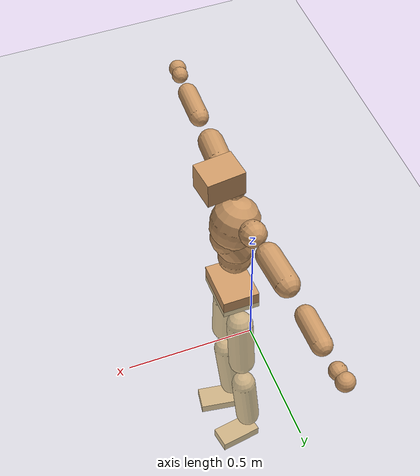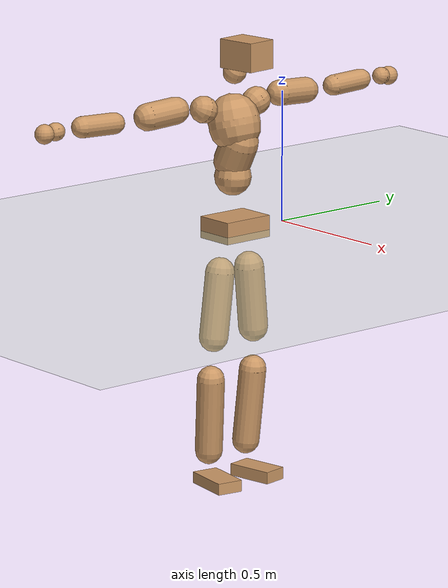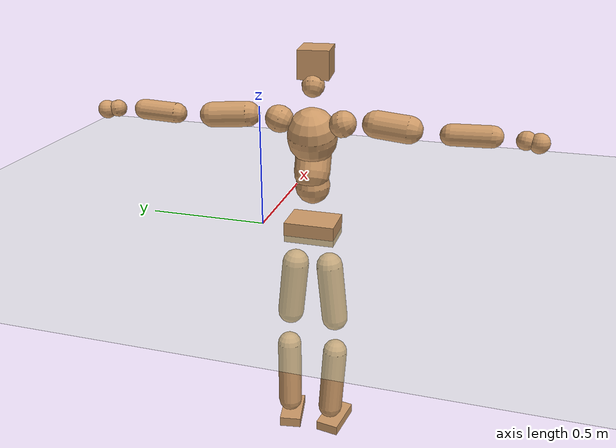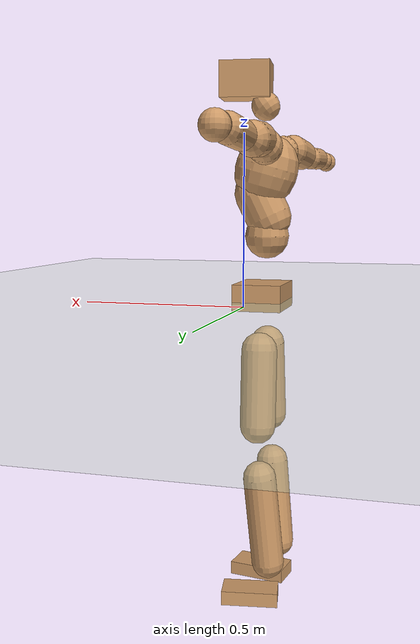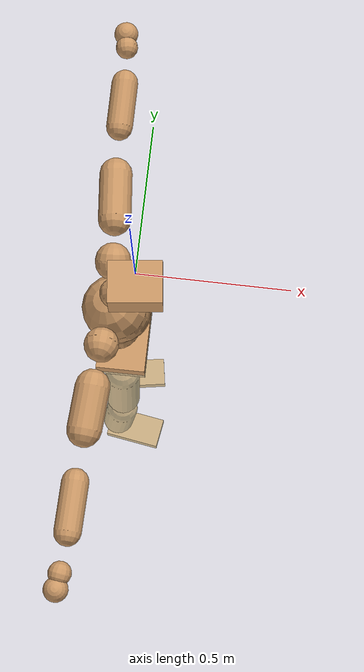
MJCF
<mujoco model="humanoid">
  <compiler coordinate="local" angle="radian"/>
  <default>
    <joint damping="0.0" armature="0.01" stiffness="0.0" limited="true"/>
    <geom conaffinity="1" condim="3" contype="7" margin="0.001" rgba="0.8 0.6 .4 1"/>
  </default>
  <asset>
    <texture type="skybox" builtin="gradient" rgb1=".4 .5 .6" rgb2="0 0 0" width="100" height="100"/>
    <texture builtin="flat" height="1278" mark="cross" markrgb="1 1 1" name="texgeom" random="0.01" rgb1="0.8 0.6 0.4" rgb2="0.8 0.6 0.4" type="cube" width="127"/>
    <texture builtin="checker" height="100" name="texplane" rgb1="0 0 0" rgb2="0.8 0.8 0.8" type="2d" width="100"/>
    <material name="MatPlane" reflectance="0.5" shininess="1" specular="1" texrepeat="60 60" texture="texplane"/>
    <material name="geom" texture="texgeom" texuniform="true"/>
  </asset>
  <worldbody>
    <light cutoff="100" diffuse="1 1 1" dir="-0 0 -1.3" directional="true" exponent="1" pos="0 0 1.3" specular=".1 .1 .1"/>
    <geom conaffinity="1" condim="3" name="floor" pos="0 0 0" rgba="0.8 0.9 0.8 1" size="100 100 .2" type="plane" material="MatPlane"/>
    <body name="Pelvis" pos="-0.0023 -0.223 0.0244">
      <freejoint name="Pelvis"/>
      <geom type="box" contype="1" conaffinity="1" density="5359.375054" pos="-0.0064 -0.0000 -0.0127" size="0.0765 0.1032 0.0413" quat="1.0000 0.0000 0.0000 0.0033" name="Pelvis"/>
      <body name="L_Hip" pos="-0.0124 0.0659 -0.0925">
        <joint name="L_Hip_x" type="hinge" pos="0 0 0" axis="1 0 0" stiffness="1600" damping="160" armature="0.02" range="-180.0000 180.0000"/>
        <joint name="L_Hip_y" type="hinge" pos="0 0 0" axis="0 1 0" stiffness="1600" damping="160" armature="0.02" range="-180.0000 180.0000"/>
        <joint name="L_Hip_z" type="hinge" pos="0 0 0" axis="0 0 1" stiffness="1600" damping="160" armature="0.02" range="-180.0000 180.0000"/>
        <geom type="capsule" contype="1" conaffinity="1" density="2040.816327" size="0.056" fromto="-0.0007 0.0083 -0.0856 -0.0028 0.0314 -0.3257" name="L_Hip"/>
        <body name="L_Knee" pos="-0.0035 0.0397 -0.4114">
          <joint name="L_Knee_x" type="hinge" pos="0 0 0" axis="1 0 0" stiffness="1600" damping="160" armature="0.02" range="-180.0000 180.0000"/>
          <joint name="L_Knee_y" type="hinge" pos="0 0 0" axis="0 1 0" stiffness="1600" damping="160" armature="0.02" range="-180.0000 180.0000"/>
          <joint name="L_Knee_z" type="hinge" pos="0 0 0" axis="0 0 1" stiffness="1600" damping="160" armature="0.02" range="-180.0000 180.0000"/>
          <geom type="capsule" contype="1" conaffinity="1" density="1234.567901" size="0.0521" fromto="-0.0080 -0.0028 -0.0817 -0.0360 -0.0126 -0.3676" name="L_Knee"/>
          <body name="L_Ankle" pos="-0.044 -0.0155 -0.4493">
            <joint name="L_Ankle_x" type="hinge" pos="0 0 0" axis="1 0 0" stiffness="1600" damping="160" armature="0.02" range="-180.0000 180.0000"/>
            <joint name="L_Ankle_y" type="hinge" pos="0 0 0" axis="0 1 0" stiffness="1600" damping="160" armature="0.02" range="-180.0000 180.0000"/>
            <joint name="L_Ankle_z" type="hinge" pos="0 0 0" axis="0 0 1" stiffness="1600" damping="160" armature="0.02" range="-180.0000 180.0000"/>
            <geom type="box" contype="1" conaffinity="1" density="999.999966" pos="0.0646 0.0105 -0.0321" size="0.0903 0.0474 0.023" quat="0.9967 0.0000 0.0000 0.0806" name="L_Ankle"/>
            <body name="L_Toe" pos="0.1293 0.021 -0.0643">
              <joint name="L_Toe_x" type="hinge" pos="0 0 0" axis="1 0 0" stiffness="1000" damping="100" armature="0.02" range="-180.0000 180.0000"/>
              <joint name="L_Toe_y" type="hinge" pos="0 0 0" axis="0 1 0" stiffness="1000" damping="100" armature="0.02" range="-180.0000 180.0000"/>
              <joint name="L_Toe_z" type="hinge" pos="0 0 0" axis="0 0 1" stiffness="1000" damping="100" armature="0.02" range="-180.0000 180.0000"/>
              <geom type="box" contype="1" conaffinity="1" density="8860062.387319" pos="0.0000 0.0000 0.0317" size="0.001 0.0024 0.0011" quat="0.9962 0.0000 0.0000 0.0868" name="L_Toe"/>
            </body>
          </body>
        </body>
      </body>
      <body name="R_Hip" pos="-0.0071 -0.0627 -0.0918">
        <joint name="R_Hip_x" type="hinge" pos="0 0 0" axis="1 0 0" stiffness="1600" damping="160" armature="0.02" range="-180.0000 180.0000"/>
        <joint name="R_Hip_y" type="hinge" pos="0 0 0" axis="0 1 0" stiffness="1600" damping="160" armature="0.02" range="-180.0000 180.0000"/>
        <joint name="R_Hip_z" type="hinge" pos="0 0 0" axis="0 0 1" stiffness="1600" damping="160" armature="0.02" range="-180.0000 180.0000"/>
        <geom type="capsule" contype="1" conaffinity="1" density="2040.816327" size="0.0551" fromto="-0.0012 -0.0096 -0.0846 -0.0049 -0.0376 -0.3328" name="R_Hip"/>
        <body name="R_Knee" pos="-0.0062 -0.0472 -0.4174">
          <joint name="R_Knee_x" type="hinge" pos="0 0 0" axis="1 0 0" stiffness="1600" damping="160" armature="0.02" range="-180.0000 180.0000"/>
          <joint name="R_Knee_y" type="hinge" pos="0 0 0" axis="0 1 0" stiffness="1600" damping="160" armature="0.02" range="-180.0000 180.0000"/>
          <joint name="R_Knee_z" type="hinge" pos="0 0 0" axis="0 0 1" stiffness="1600" damping="160" armature="0.02" range="-180.0000 180.0000"/>
          <geom type="capsule" contype="1" conaffinity="1" density="1234.567901" size="0.0525" fromto="-0.0076 0.0033 -0.0821 -0.0339 0.0148 -0.3661" name="R_Knee"/>
          <body name="R_Ankle" pos="-0.0415 0.0182 -0.4482">
            <joint name="R_Ankle_x" type="hinge" pos="0 0 0" axis="1 0 0" stiffness="1600" damping="160" armature="0.02" range="-180.0000 180.0000"/>
            <joint name="R_Ankle_y" type="hinge" pos="0 0 0" axis="0 1 0" stiffness="1600" damping="160" armature="0.02" range="-180.0000 180.0000"/>
            <joint name="R_Ankle_z" type="hinge" pos="0 0 0" axis="0 0 1" stiffness="1600" damping="160" armature="0.02" range="-180.0000 180.0000"/>
            <geom type="box" contype="1" conaffinity="1" density="1000.00001" pos="0.0668 -0.0106 -0.0264" size="0.0933 0.0505 0.022" quat="0.9969 0.0000 0.0000 -0.0789" name="R_Ankle"/>
            <body name="R_Toe" pos="0.1336 -0.0213 -0.0528">
              <joint name="R_Toe_x" type="hinge" pos="0 0 0" axis="1 0 0" stiffness="1000" damping="100" armature="0.02" range="-180.0000 180.0000"/>
              <joint name="R_Toe_y" type="hinge" pos="0 0 0" axis="0 1 0" stiffness="1000" damping="100" armature="0.02" range="-180.0000 180.0000"/>
              <joint name="R_Toe_z" type="hinge" pos="0 0 0" axis="0 0 1" stiffness="1000" damping="100" armature="0.02" range="-180.0000 180.0000"/>
              <geom type="box" contype="1" conaffinity="1" density="8517376.661409" pos="0.0000 0.0000 0.0299" size="0.0009 0.0024 0.0013" quat="0.9975 0.0000 0.0000 -0.0706" name="R_Toe"/>
            </body>
          </body>
        </body>
      </body>
      <body name="Torso" pos="-0.0191 -0.0035 0.1081">
        <joint name="Torso_x" type="hinge" pos="0 0 0" axis="1 0 0" stiffness="2000" damping="200" armature="0.02" range="-180.0000 180.0000"/>
        <joint name="Torso_y" type="hinge" pos="0 0 0" axis="0 1 0" stiffness="2000" damping="200" armature="0.02" range="-180.0000 180.0000"/>
        <joint name="Torso_z" type="hinge" pos="0 0 0" axis="0 0 1" stiffness="2000" damping="200" armature="0.02" range="-180.0000 180.0000"/>
        <geom type="capsule" contype="1" conaffinity="1" density="2040.816327" size="0.0699" fromto="0.0006 0.0026 0.0699 0.0006 0.0025 0.0672" name="Torso"/>
        <body name="Spine" pos="0.0012 0.0051 0.1371">
          <joint name="Spine_x" type="hinge" pos="0 0 0" axis="1 0 0" stiffness="2000" damping="200" armature="0.02" range="-180.0000 180.0000"/>
          <joint name="Spine_y" type="hinge" pos="0 0 0" axis="0 1 0" stiffness="2000" damping="200" armature="0.02" range="-180.0000 180.0000"/>
          <joint name="Spine_z" type="hinge" pos="0 0 0" axis="0 0 1" stiffness="2000" damping="200" armature="0.02" range="-180.0000 180.0000"/>
          <geom type="capsule" contype="1" conaffinity="1" density="2040.816327" size="0.0716" fromto="0.0312 0.0027 0.0644 -0.0052 -0.0005 -0.0107" name="Spine"/>
          <body name="Chest" pos="0.026 0.0023 0.0536">
            <joint name="Chest_x" type="hinge" pos="0 0 0" axis="1 0 0" stiffness="2000" damping="200" armature="0.02" range="-180.0000 180.0000"/>
            <joint name="Chest_y" type="hinge" pos="0 0 0" axis="0 1 0" stiffness="2000" damping="200" armature="0.02" range="-180.0000 180.0000"/>
            <joint name="Chest_z" type="hinge" pos="0 0 0" axis="0 0 1" stiffness="2000" damping="200" armature="0.02" range="-180.0000 180.0000"/>
            <geom type="capsule" contype="1" conaffinity="1" density="2040.816327" size="0.0979" fromto="-0.0263 -0.0014 0.0943 -0.0194 -0.0010 0.0695" name="Chest"/>
            <body name="Neck" pos="-0.0485 -0.0052 0.2369">
              <joint name="Neck_x" type="hinge" pos="0 0 0" axis="1 0 0" stiffness="1000" damping="100" armature="0.02" range="-180.0000 180.0000"/>
              <joint name="Neck_y" type="hinge" pos="0 0 0" axis="0 1 0" stiffness="1000" damping="100" armature="0.02" range="-180.0000 180.0000"/>
              <joint name="Neck_z" type="hinge" pos="0 0 0" axis="0 0 1" stiffness="1000" damping="100" armature="0.02" range="-180.0000 180.0000"/>
              <geom type="capsule" contype="1" conaffinity="1" density="1000" size="0.044" fromto="0.0290 0.0024 0.0372 0.0302 0.0025 0.0388" name="Neck"/>
              <body name="Head" pos="0.0592 0.0049 0.076">
                <joint name="Head_x" type="hinge" pos="0 0 0" axis="1 0 0" stiffness="1000" damping="100" armature="0.02" range="-180.0000 180.0000"/>
                <joint name="Head_y" type="hinge" pos="0 0 0" axis="0 1 0" stiffness="1000" damping="100" armature="0.02" range="-180.0000 180.0000"/>
                <joint name="Head_z" type="hinge" pos="0 0 0" axis="0 0 1" stiffness="1000" damping="100" armature="0.02" range="-180.0000 180.0000"/>
                <geom type="box" contype="1" conaffinity="1" density="2250.000041" pos="0.0306 0.0035 0.0390" size="0.077 0.0605 0.0543" quat="0.9984 0.0000 0.0000 0.0564" name="Head"/>
              </body>
            </body>
            <body name="L_Thorax" pos="-0.0429 0.078 0.1281">
              <joint name="L_Thorax_x" type="hinge" pos="0 0 0" axis="1 0 0" stiffness="1000" damping="100" armature="0.02" range="-180.0000 180.0000"/>
              <joint name="L_Thorax_y" type="hinge" pos="0 0 0" axis="0 1 0" stiffness="1000" damping="100" armature="0.02" range="-180.0000 180.0000"/>
              <joint name="L_Thorax_z" type="hinge" pos="0 0 0" axis="0 0 1" stiffness="1000" damping="100" armature="0.02" range="-180.0000 180.0000"/>
              <geom type="capsule" contype="1" conaffinity="1" density="1000" size="0.0527" fromto="-0.0027 0.0493 0.0184 -0.0024 0.0432 0.0161" name="L_Thorax"/>
              <body name="L_Shoulder" pos="-0.0051 0.0925 0.0345">
                <joint name="L_Shoulder_x" type="hinge" pos="0 0 0" axis="1 0 0" stiffness="1000" damping="100" armature="0.02" range="-720.0000 720.0000"/>
                <joint name="L_Shoulder_y" type="hinge" pos="0 0 0" axis="0 1 0" stiffness="1000" damping="100" armature="0.02" range="-720.0000 720.0000"/>
                <joint name="L_Shoulder_z" type="hinge" pos="0 0 0" axis="0 0 1" stiffness="1000" damping="100" armature="0.02" range="-720.0000 720.0000"/>
                <geom type="capsule" contype="1" conaffinity="1" density="1000" size="0.0492" fromto="-0.0076 0.0786 -0.0053 -0.0214 0.2201 -0.0149" name="L_Shoulder"/>
                <body name="L_Elbow" pos="-0.029 0.2988 -0.0202">
                  <joint name="L_Elbow_x" type="hinge" pos="0 0 0" axis="1 0 0" stiffness="1000" damping="100" armature="0.02" range="-720.0000 720.0000"/>
                  <joint name="L_Elbow_y" type="hinge" pos="0 0 0" axis="0 1 0" stiffness="1000" damping="100" armature="0.02" range="-720.0000 720.0000"/>
                  <joint name="L_Elbow_z" type="hinge" pos="0 0 0" axis="0 0 1" stiffness="1000" damping="100" armature="0.02" range="-720.0000 720.0000"/>
                  <geom type="capsule" contype="1" conaffinity="1" density="1000" size="0.0395" fromto="-0.0002 0.0695 0.0028 -0.0005 0.2091 0.0084" name="L_Elbow"/>
                  <body name="L_Wrist" pos="-0.0007 0.2786 0.0112">
                    <joint name="L_Wrist_x" type="hinge" pos="0 0 0" axis="1 0 0" stiffness="600" damping="60" armature="0.02" range="-180.0000 180.0000"/>
                    <joint name="L_Wrist_y" type="hinge" pos="0 0 0" axis="0 1 0" stiffness="600" damping="60" armature="0.02" range="-180.0000 180.0000"/>
                    <joint name="L_Wrist_z" type="hinge" pos="0 0 0" axis="0 0 1" stiffness="600" damping="60" armature="0.02" range="-180.0000 180.0000"/>
                    <geom type="capsule" contype="1" conaffinity="1" density="1000" size="0.0333" fromto="-0.0074 0.0442 -0.0054 -0.0077 0.0462 -0.0057" name="L_Wrist"/>
                    <body name="L_Hand" pos="-0.015 0.0904 -0.0111">
                      <joint name="L_Hand_x" type="hinge" pos="0 0 0" axis="1 0 0" stiffness="600" damping="60" armature="0.02" range="-180.0000 180.0000"/>
                      <joint name="L_Hand_y" type="hinge" pos="0 0 0" axis="0 1 0" stiffness="600" damping="60" armature="0.02" range="-180.0000 180.0000"/>
                      <joint name="L_Hand_z" type="hinge" pos="0 0 0" axis="0 0 1" stiffness="600" damping="60" armature="0.02" range="-180.0000 180.0000"/>
                      <geom type="sphere" contype="1" conaffinity="1" density="1000" size="0.0361" pos="0.0000 0.0000 0.0000" name="L_Hand"/>
                    </body>
                  </body>
                </body>
              </body>
            </body>
            <body name="R_Thorax" pos="-0.0456 -0.08 0.1262">
              <joint name="R_Thorax_x" type="hinge" pos="0 0 0" axis="1 0 0" stiffness="1000" damping="100" armature="0.02" range="-180.0000 180.0000"/>
              <joint name="R_Thorax_y" type="hinge" pos="0 0 0" axis="0 1 0" stiffness="1000" damping="100" armature="0.02" range="-180.0000 180.0000"/>
              <joint name="R_Thorax_z" type="hinge" pos="0 0 0" axis="0 0 1" stiffness="1000" damping="100" armature="0.02" range="-180.0000 180.0000"/>
              <geom type="capsule" contype="1" conaffinity="1" density="1000" size="0.0512" fromto="-0.0032 -0.0459 0.0177 -0.0033 -0.0478 0.0184" name="R_Thorax"/>
              <body name="R_Shoulder" pos="-0.0065 -0.0936 0.036">
                <joint name="R_Shoulder_x" type="hinge" pos="0 0 0" axis="1 0 0" stiffness="1000" damping="100" armature="0.02" range="-720.0000 720.0000"/>
                <joint name="R_Shoulder_y" type="hinge" pos="0 0 0" axis="0 1 0" stiffness="1000" damping="100" armature="0.02" range="-720.0000 720.0000"/>
                <joint name="R_Shoulder_z" type="hinge" pos="0 0 0" axis="0 0 1" stiffness="1000" damping="100" armature="0.02" range="-720.0000 720.0000"/>
                <geom type="capsule" contype="1" conaffinity="1" density="1000" size="0.0514" fromto="-0.0056 -0.0810 -0.0057 -0.0142 -0.2065 -0.0146" name="R_Shoulder"/>
                <body name="R_Elbow" pos="-0.0197 -0.2874 -0.0203">
                  <joint name="R_Elbow_x" type="hinge" pos="0 0 0" axis="1 0 0" stiffness="1000" damping="100" armature="0.02" range="-720.0000 720.0000"/>
                  <joint name="R_Elbow_y" type="hinge" pos="0 0 0" axis="0 1 0" stiffness="1000" damping="100" armature="0.02" range="-720.0000 720.0000"/>
                  <joint name="R_Elbow_z" type="hinge" pos="0 0 0" axis="0 0 1" stiffness="1000" damping="100" armature="0.02" range="-720.0000 720.0000"/>
                  <geom type="capsule" contype="1" conaffinity="1" density="1000" size="0.0399" fromto="-0.0014 -0.0699 0.0024 -0.0044 -0.2146 0.0074" name="R_Elbow"/>
                  <body name="R_Wrist" pos="-0.0058 -0.2845 0.0098">
                    <joint name="R_Wrist_x" type="hinge" pos="0 0 0" axis="1 0 0" stiffness="600" damping="60" armature="0.02" range="-180.0000 180.0000"/>
                    <joint name="R_Wrist_y" type="hinge" pos="0 0 0" axis="0 1 0" stiffness="600" damping="60" armature="0.02" range="-180.0000 180.0000"/>
                    <joint name="R_Wrist_z" type="hinge" pos="0 0 0" axis="0 0 1" stiffness="600" damping="60" armature="0.02" range="-180.0000 180.0000"/>
                    <geom type="capsule" contype="1" conaffinity="1" density="1000" size="0.034" fromto="-0.0057 -0.0446 -0.0041 -0.0060 -0.0465 -0.0043" name="R_Wrist"/>
                    <body name="R_Hand" pos="-0.0117 -0.0911 -0.0083">
                      <joint name="R_Hand_x" type="hinge" pos="0 0 0" axis="1 0 0" stiffness="600" damping="60" armature="0.02" range="-180.0000 180.0000"/>
                      <joint name="R_Hand_y" type="hinge" pos="0 0 0" axis="0 1 0" stiffness="600" damping="60" armature="0.02" range="-180.0000 180.0000"/>
                      <joint name="R_Hand_z" type="hinge" pos="0 0 0" axis="0 0 1" stiffness="600" damping="60" armature="0.02" range="-180.0000 180.0000"/>
                      <geom type="sphere" contype="1" conaffinity="1" density="1000" size="0.0362" pos="0.0000 0.0000 0.0000" name="R_Hand"/>
                    </body>
                  </body>
                </body>
              </body>
            </body>
          </body>
        </body>
      </body>
    </body>
  </worldbody>
  <actuator>
    <motor name="L_Hip_x" joint="L_Hip_x" gear="500"/>
    <motor name="L_Hip_y" joint="L_Hip_y" gear="500"/>
    <motor name="L_Hip_z" joint="L_Hip_z" gear="500"/>
    <motor name="L_Knee_x" joint="L_Knee_x" gear="500"/>
    <motor name="L_Knee_y" joint="L_Knee_y" gear="500"/>
    <motor name="L_Knee_z" joint="L_Knee_z" gear="500"/>
    <motor name="L_Ankle_x" joint="L_Ankle_x" gear="500"/>
    <motor name="L_Ankle_y" joint="L_Ankle_y" gear="500"/>
    <motor name="L_Ankle_z" joint="L_Ankle_z" gear="500"/>
    <motor name="L_Toe_x" joint="L_Toe_x" gear="500"/>
    <motor name="L_Toe_y" joint="L_Toe_y" gear="500"/>
    <motor name="L_Toe_z" joint="L_Toe_z" gear="500"/>
    <motor name="R_Hip_x" joint="R_Hip_x" gear="500"/>
    <motor name="R_Hip_y" joint="R_Hip_y" gear="500"/>
    <motor name="R_Hip_z" joint="R_Hip_z" gear="500"/>
    <motor name="R_Knee_x" joint="R_Knee_x" gear="500"/>
    <motor name="R_Knee_y" joint="R_Knee_y" gear="500"/>
    <motor name="R_Knee_z" joint="R_Knee_z" gear="500"/>
    <motor name="R_Ankle_x" joint="R_Ankle_x" gear="500"/>
    <motor name="R_Ankle_y" joint="R_Ankle_y" gear="500"/>
    <motor name="R_Ankle_z" joint="R_Ankle_z" gear="500"/>
    <motor name="R_Toe_x" joint="R_Toe_x" gear="500"/>
    <motor name="R_Toe_y" joint="R_Toe_y" gear="500"/>
    <motor name="R_Toe_z" joint="R_Toe_z" gear="500"/>
    <motor name="Torso_x" joint="Torso_x" gear="500"/>
    <motor name="Torso_y" joint="Torso_y" gear="500"/>
    <motor name="Torso_z" joint="Torso_z" gear="500"/>
    <motor name="Spine_x" joint="Spine_x" gear="500"/>
    <motor name="Spine_y" joint="Spine_y" gear="500"/>
    <motor name="Spine_z" joint="Spine_z" gear="500"/>
    <motor name="Chest_x" joint="Chest_x" gear="500"/>
    <motor name="Chest_y" joint="Chest_y" gear="500"/>
    <motor name="Chest_z" joint="Chest_z" gear="500"/>
    <motor name="Neck_x" joint="Neck_x" gear="500"/>
    <motor name="Neck_y" joint="Neck_y" gear="500"/>
    <motor name="Neck_z" joint="Neck_z" gear="500"/>
    <motor name="Head_x" joint="Head_x" gear="500"/>
    <motor name="Head_y" joint="Head_y" gear="500"/>
    <motor name="Head_z" joint="Head_z" gear="500"/>
    <motor name="L_Thorax_x" joint="L_Thorax_x" gear="500"/>
    <motor name="L_Thorax_y" joint="L_Thorax_y" gear="500"/>
    <motor name="L_Thorax_z" joint="L_Thorax_z" gear="500"/>
    <motor name="L_Shoulder_x" joint="L_Shoulder_x" gear="500"/>
    <motor name="L_Shoulder_y" joint="L_Shoulder_y" gear="500"/>
    <motor name="L_Shoulder_z" joint="L_Shoulder_z" gear="500"/>
    <motor name="L_Elbow_x" joint="L_Elbow_x" gear="500"/>
    <motor name="L_Elbow_y" joint="L_Elbow_y" gear="500"/>
    <motor name="L_Elbow_z" joint="L_Elbow_z" gear="500"/>
    <motor name="L_Wrist_x" joint="L_Wrist_x" gear="500"/>
    <motor name="L_Wrist_y" joint="L_Wrist_y" gear="500"/>
    <motor name="L_Wrist_z" joint="L_Wrist_z" gear="500"/>
    <motor name="L_Hand_x" joint="L_Hand_x" gear="500"/>
    <motor name="L_Hand_y" joint="L_Hand_y" gear="500"/>
    <motor name="L_Hand_z" joint="L_Hand_z" gear="500"/>
    <motor name="R_Thorax_x" joint="R_Thorax_x" gear="500"/>
    <motor name="R_Thorax_y" joint="R_Thorax_y" gear="500"/>
    <motor name="R_Thorax_z" joint="R_Thorax_z" gear="500"/>
    <motor name="R_Shoulder_x" joint="R_Shoulder_x" gear="500"/>
    <motor name="R_Shoulder_y" joint="R_Shoulder_y" gear="500"/>
    <motor name="R_Shoulder_z" joint="R_Shoulder_z" gear="500"/>
    <motor name="R_Elbow_x" joint="R_Elbow_x" gear="500"/>
    <motor name="R_Elbow_y" joint="R_Elbow_y" gear="500"/>
    <motor name="R_Elbow_z" joint="R_Elbow_z" gear="500"/>
    <motor name="R_Wrist_x" joint="R_Wrist_x" gear="500"/>
    <motor name="R_Wrist_y" joint="R_Wrist_y" gear="500"/>
    <motor name="R_Wrist_z" joint="R_Wrist_z" gear="500"/>
    <motor name="R_Hand_x" joint="R_Hand_x" gear="500"/>
    <motor name="R_Hand_y" joint="R_Hand_y" gear="500"/>
    <motor name="R_Hand_z" joint="R_Hand_z" gear="500"/>
  </actuator>
  <contact>
    <exclude body1="Torso" body2="Chest"/>
    <exclude body1="Head" body2="Chest"/>
    <exclude body1="R_Knee" body2="R_Toe"/>
    <exclude body1="R_Knee" body2="L_Ankle"/>
    <exclude body1="R_Knee" body2="L_Toe"/>
    <exclude body1="L_Knee" body2="L_Toe"/>
    <exclude body1="L_Knee" body2="R_Ankle"/>
    <exclude body1="L_Knee" body2="R_Toe"/>
    <exclude body1="L_Shoulder" body2="Chest"/>
    <exclude body1="R_Shoulder" body2="Chest"/>
  </contact>
  <sensor/>
  <size njmax="700" nconmax="700"/>
</mujoco>
